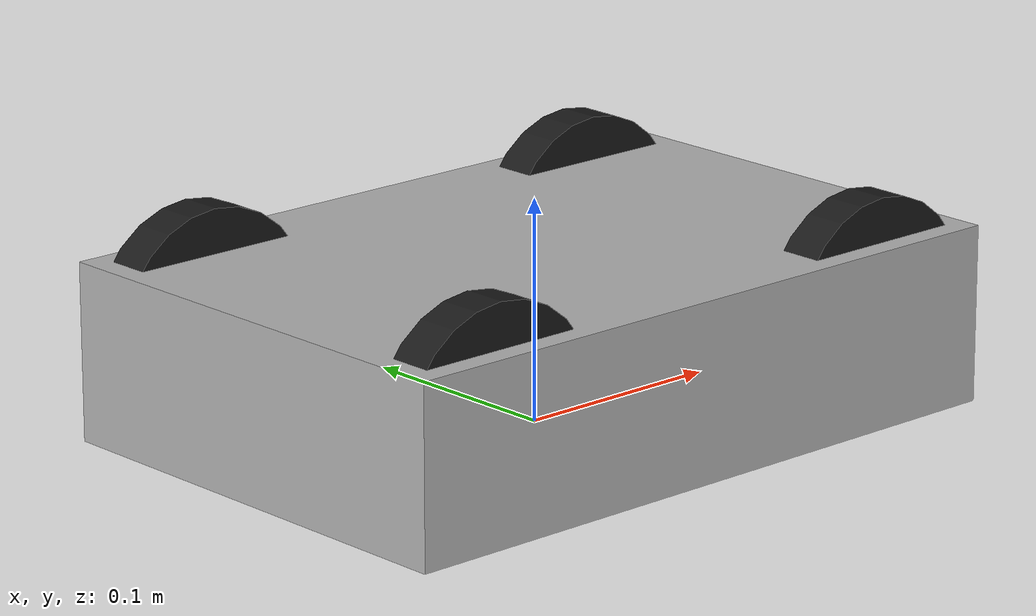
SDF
<?xml version="1.0" ?>
<sdf version="1.6">
  <!-- Raspbot V2-like: 4 mecanum wheels + camera + ultrasonic -->
  <model name="raspbot" xmlns:ignition="http://ignitionrobotics.org/schema">
    <!-- Spawn pose is handled by ros_gz_sim create (-x/-y/-z) -->

    <link name="chassis">
      <pose>0 0 0.04 0 0 0</pose>
      <inertial>
        <mass>2.0</mass>
        <inertia>
          <ixx>0.02</ixx><ixy>0</ixy><ixz>0</ixz>
          <iyy>0.03</iyy><iyz>0</iyz>
          <izz>0.04</izz>
        </inertia>
      </inertial>
      <visual name="visual">
        <geometry>
          <box><size>0.32 0.22 0.08</size></box>
        </geometry>
        <material>
          <ambient>0.7 0.7 0.7 1</ambient>
          <diffuse>0.7 0.7 0.7 1</diffuse>
        </material>
      </visual>
      <collision name="collision">
        <geometry>
          <box><size>0.32 0.22 0.08</size></box>
        </geometry>
      </collision>

      <!-- Ultrasonic-like range sensor (ray with 1 sample -> LaserScan topic: /raspbot/ultrasonic) -->
      <sensor name="ultrasonic" type="ray">
        <pose>0.16 0 0.08 0 0 0</pose>
        <ray>
          <scan>
            <horizontal>
              <samples>1</samples>
              <resolution>1</resolution>
              <min_angle>0</min_angle>
              <max_angle>0</max_angle>
            </horizontal>
          </scan>
          <range>
            <min>0.02</min>
            <max>4.0</max>
            <resolution>0.01</resolution>
          </range>
        </ray>
        <always_on>1</always_on>
        <update_rate>20</update_rate>
        <visualize>true</visualize>
        <topic>/raspbot/ultrasonic</topic>
      </sensor>
    </link>

    <!-- Camera mount (visual like Raspbot v2 PTZ; joints are static by default) -->
    <link name="camera_pan">
      <pose>0 0 0 0 0 0</pose>
      <visual name="visual">
        <pose>0 0 0 0 0 0</pose>
        <geometry><cylinder><radius>0.02</radius><length>0.02</length></cylinder></geometry>
        <material><ambient>0.2 0.2 0.2 1</ambient><diffuse>0.2 0.2 0.2 1</diffuse></material>
      </visual>
      <collision name="collision">
        <geometry><cylinder><radius>0.02</radius><length>0.02</length></cylinder></geometry>
      </collision>
      <inertial>
        <mass>0.05</mass>
        <inertia>
          <ixx>1e-5</ixx><ixy>0</ixy><ixz>0</ixz>
          <iyy>1e-5</iyy><iyz>0</iyz>
          <izz>1e-5</izz>
        </inertia>
      </inertial>
    </link>

    <joint name="camera_pan_joint" type="revolute">
      <parent>chassis</parent>
      <child>camera_pan</child>
      <!-- mount position (front-top of chassis) -->
      <pose>0.14 0 0.12 0 0 0</pose>
      <axis>
        <xyz>0 0 1</xyz>
        <limit><lower>-1.57</lower><upper>1.57</upper></limit>
      </axis>
    </joint>

    <link name="camera_tilt">
      <pose>0 0 0 0 0 0</pose>
      <visual name="visual">
        <geometry><box><size>0.02 0.04 0.03</size></box></geometry>
        <material><ambient>0.2 0.2 0.2 1</ambient><diffuse>0.2 0.2 0.2 1</diffuse></material>
      </visual>
      <collision name="collision">
        <geometry><box><size>0.02 0.04 0.03</size></box></geometry>
      </collision>
      <inertial>
        <mass>0.05</mass>
        <inertia>
          <ixx>1e-5</ixx><ixy>0</ixy><ixz>0</ixz>
          <iyy>1e-5</iyy><iyz>0</iyz>
          <izz>1e-5</izz>
        </inertia>
      </inertial>
    </link>

    <joint name="camera_tilt_joint" type="revolute">
      <parent>camera_pan</parent>
      <child>camera_tilt</child>
      <pose>0.02 0 0 0 0 0</pose>
      <axis>
        <xyz>0 1 0</xyz>
        <limit><lower>-0.78</lower><upper>0.78</upper></limit>
      </axis>
    </joint>

    <link name="camera_body">
      <pose>0 0 0 0 0 0</pose>
      <visual name="visual">
        <geometry><box><size>0.06 0.03 0.03</size></box></geometry>
        <material><ambient>0.05 0.05 0.05 1</ambient><diffuse>0.05 0.05 0.05 1</diffuse></material>
      </visual>
      <collision name="collision">
        <geometry><box><size>0.06 0.03 0.03</size></box></geometry>
      </collision>
      <inertial>
        <mass>0.1</mass>
        <inertia>
          <ixx>2e-5</ixx><ixy>0</ixy><ixz>0</ixz>
          <iyy>2e-5</iyy><iyz>0</iyz>
          <izz>2e-5</izz>
        </inertia>
      </inertial>

      <!-- Forward camera (simulated image topic: /raspbot/camera and /raspbot/camera/camera_info) -->
      <sensor name="camera" type="camera">
        <pose>0.03 0 0 0 0 0</pose>
        <camera>
          <horizontal_fov>1.047</horizontal_fov>
          <image>
            <width>640</width>
            <height>480</height>
          </image>
          <clip>
            <near>0.05</near>
            <far>20.0</far>
          </clip>
        </camera>
        <always_on>1</always_on>
        <update_rate>30</update_rate>
        <visualize>true</visualize>
        <topic>/raspbot/camera</topic>
      </sensor>
    </link>

    <joint name="camera_body_joint" type="fixed">
      <parent>camera_tilt</parent>
      <child>camera_body</child>
      <pose>0.03 0 0 0 0 0</pose>
    </joint>

    <!-- Mecanum wheels: use diagonal friction directions (from ignition example) -->
    <link name="front_left_wheel">
      <pose>0.11 0.09 0.05 0 0 0</pose>
      <inertial>
        <mass>0.2</mass>
        <inertia>
          <ixx>0.0002</ixx><ixy>0</ixy><ixz>0</ixz>
          <iyy>0.0002</iyy><iyz>0</iyz>
          <izz>0.0002</izz>
        </inertia>
      </inertial>
      <visual name="visual">
        <pose>0 0 0 1.5707 0 0</pose>
        <geometry><cylinder><radius>0.05</radius><length>0.02</length></cylinder></geometry>
        <material><ambient>0.1 0.1 0.1 1</ambient><diffuse>0.1 0.1 0.1 1</diffuse></material>
      </visual>
      <collision name="collision">
        <pose>0 0 0 1.5707 0 0</pose>
        <geometry><cylinder><radius>0.05</radius><length>0.02</length></cylinder></geometry>
        <surface>
          <friction>
            <ode>
              <mu>1.0</mu>
              <mu2>0.0</mu2>
              <fdir1 ignition:expressed_in="chassis">1 -1 0</fdir1>
            </ode>
          </friction>
        </surface>
      </collision>
    </link>

    <link name="rear_left_wheel">
      <pose>-0.11 0.09 0.05 0 0 0</pose>
      <inertial>
        <mass>0.2</mass>
        <inertia>
          <ixx>0.0002</ixx><ixy>0</ixy><ixz>0</ixz>
          <iyy>0.0002</iyy><iyz>0</iyz>
          <izz>0.0002</izz>
        </inertia>
      </inertial>
      <visual name="visual">
        <pose>0 0 0 1.5707 0 0</pose>
        <geometry><cylinder><radius>0.05</radius><length>0.02</length></cylinder></geometry>
        <material><ambient>0.1 0.1 0.1 1</ambient><diffuse>0.1 0.1 0.1 1</diffuse></material>
      </visual>
      <collision name="collision">
        <pose>0 0 0 1.5707 0 0</pose>
        <geometry><cylinder><radius>0.05</radius><length>0.02</length></cylinder></geometry>
        <surface>
          <friction>
            <ode>
              <mu>1.0</mu>
              <mu2>0.0</mu2>
              <fdir1 ignition:expressed_in="chassis">1 1 0</fdir1>
            </ode>
          </friction>
        </surface>
      </collision>
    </link>

    <link name="front_right_wheel">
      <pose>0.11 -0.09 0.05 0 0 0</pose>
      <inertial>
        <mass>0.2</mass>
        <inertia>
          <ixx>0.0002</ixx><ixy>0</ixy><ixz>0</ixz>
          <iyy>0.0002</iyy><iyz>0</iyz>
          <izz>0.0002</izz>
        </inertia>
      </inertial>
      <visual name="visual">
        <pose>0 0 0 1.5707 0 0</pose>
        <geometry><cylinder><radius>0.05</radius><length>0.02</length></cylinder></geometry>
        <material><ambient>0.1 0.1 0.1 1</ambient><diffuse>0.1 0.1 0.1 1</diffuse></material>
      </visual>
      <collision name="collision">
        <pose>0 0 0 1.5707 0 0</pose>
        <geometry><cylinder><radius>0.05</radius><length>0.02</length></cylinder></geometry>
        <surface>
          <friction>
            <ode>
              <mu>1.0</mu>
              <mu2>0.0</mu2>
              <fdir1 ignition:expressed_in="chassis">1 1 0</fdir1>
            </ode>
          </friction>
        </surface>
      </collision>
    </link>

    <link name="rear_right_wheel">
      <pose>-0.11 -0.09 0.05 0 0 0</pose>
      <inertial>
        <mass>0.2</mass>
        <inertia>
          <ixx>0.0002</ixx><ixy>0</ixy><ixz>0</ixz>
          <iyy>0.0002</iyy><iyz>0</iyz>
          <izz>0.0002</izz>
        </inertia>
      </inertial>
      <visual name="visual">
        <pose>0 0 0 1.5707 0 0</pose>
        <geometry><cylinder><radius>0.05</radius><length>0.02</length></cylinder></geometry>
        <material><ambient>0.1 0.1 0.1 1</ambient><diffuse>0.1 0.1 0.1 1</diffuse></material>
      </visual>
      <collision name="collision">
        <pose>0 0 0 1.5707 0 0</pose>
        <geometry><cylinder><radius>0.05</radius><length>0.02</length></cylinder></geometry>
        <surface>
          <friction>
            <ode>
              <mu>1.0</mu>
              <mu2>0.0</mu2>
              <fdir1 ignition:expressed_in="chassis">1 -1 0</fdir1>
            </ode>
          </friction>
        </surface>
      </collision>
    </link>

    <joint name="front_left_wheel_joint" type="revolute">
      <parent>chassis</parent>
      <child>front_left_wheel</child>
      <axis>
        <xyz>0 1 0</xyz>
        <limit><lower>-1.79769e+308</lower><upper>1.79769e+308</upper></limit>
      </axis>
    </joint>
    <joint name="rear_left_wheel_joint" type="revolute">
      <parent>chassis</parent>
      <child>rear_left_wheel</child>
      <axis>
        <xyz>0 1 0</xyz>
        <limit><lower>-1.79769e+308</lower><upper>1.79769e+308</upper></limit>
      </axis>
    </joint>
    <joint name="front_right_wheel_joint" type="revolute">
      <parent>chassis</parent>
      <child>front_right_wheel</child>
      <axis>
        <xyz>0 1 0</xyz>
        <limit><lower>-1.79769e+308</lower><upper>1.79769e+308</upper></limit>
      </axis>
    </joint>
    <joint name="rear_right_wheel_joint" type="revolute">
      <parent>chassis</parent>
      <child>rear_right_wheel</child>
      <axis>
        <xyz>0 1 0</xyz>
        <limit><lower>-1.79769e+308</lower><upper>1.79769e+308</upper></limit>
      </axis>
    </joint>

    <!-- Mecanum drive plugin (command topic: /model/raspbot/cmd_vel) -->
    <plugin filename="libignition-gazebo6-mecanum-drive-system.so" name="ignition::gazebo::systems::MecanumDrive">
      <front_left_joint>front_left_wheel_joint</front_left_joint>
      <front_right_joint>front_right_wheel_joint</front_right_joint>
      <back_left_joint>rear_left_wheel_joint</back_left_joint>
      <back_right_joint>rear_right_wheel_joint</back_right_joint>
      <wheel_separation>0.18</wheel_separation>
      <wheelbase>0.22</wheelbase>
      <wheel_radius>0.05</wheel_radius>
      <topic>/model/raspbot/cmd_vel</topic>
      <min_acceleration>-5</min_acceleration>
      <max_acceleration>5</max_acceleration>
    </plugin>
  </model>
</sdf>
